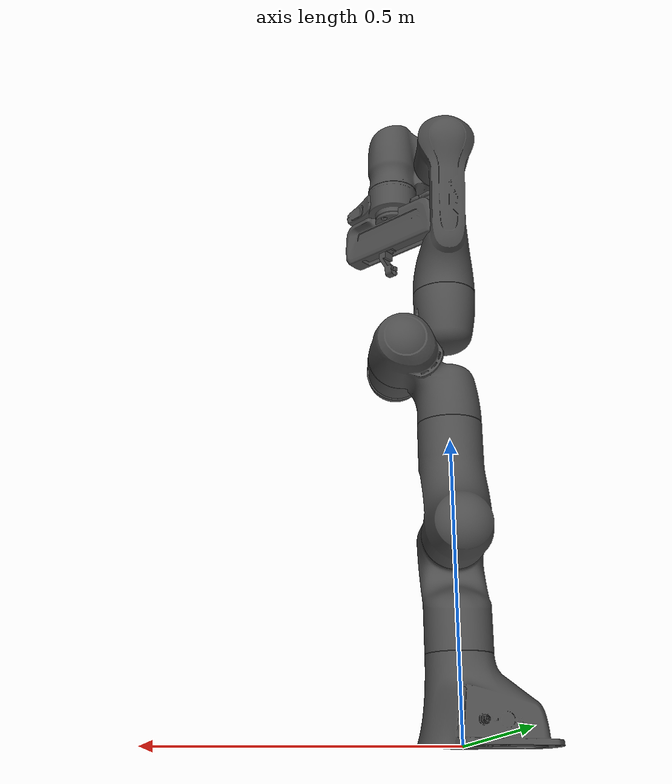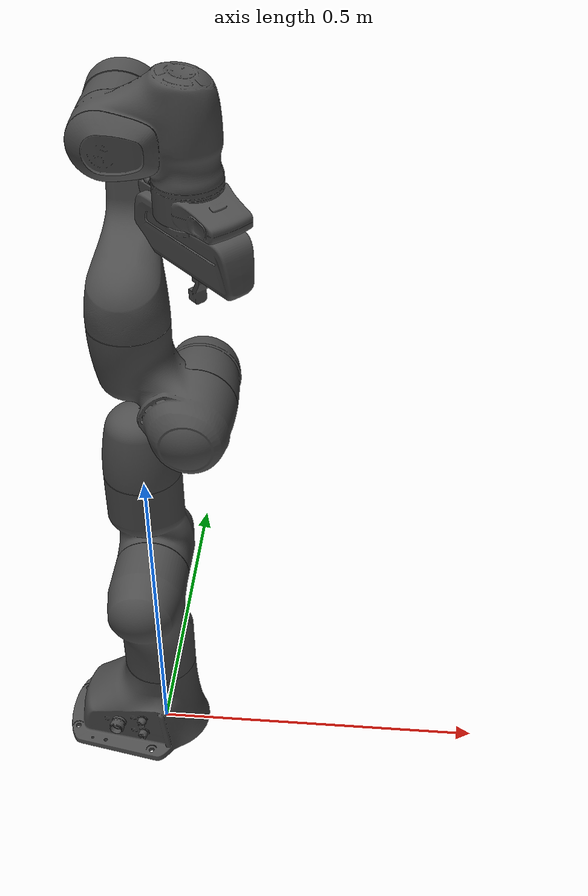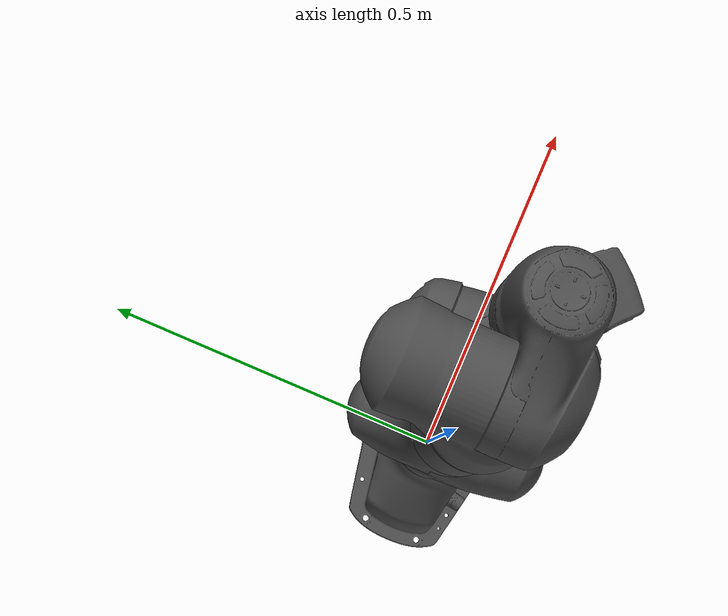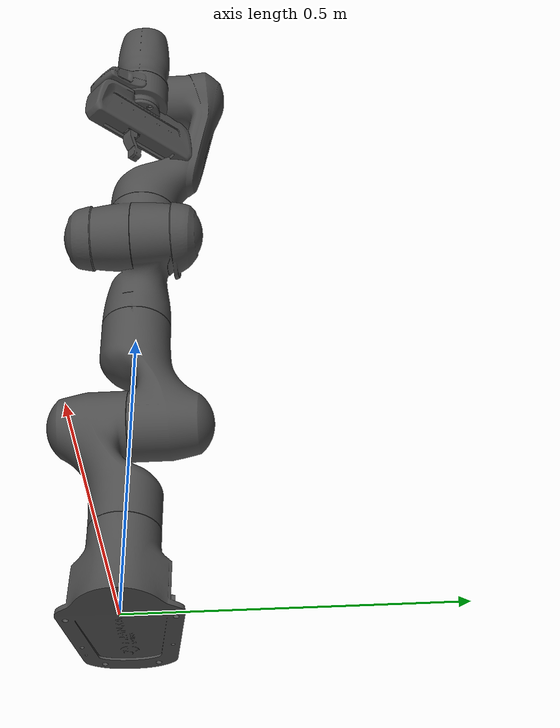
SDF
<?xml version="1.0"?>
<sdf version='1.6'>
  <model name="panda">
  <pose>0 0 0 0 0 0</pose>
    <link name='base_link'/>

    <link name='panda_link0'>
      <pose>0 0 0 0 0 0</pose>
      <inertial>
        <pose>0 0 0 0 0 0</pose>
        <inertia>
          <ixx>1</ixx>
          <ixy>0</ixy>
          <ixz>0</ixz>
          <iyy>1</iyy>
          <iyz>0</iyz>
          <izz>1</izz>
        </inertia>
        <mass>0</mass>
      </inertial>
      <collision name='panda_link0_collision'>
        <pose>0 0 0 0 0 0</pose>
        <geometry>
          <mesh>
            <scale>1 1 1</scale>
            <uri>model://panda/meshes/collision/link0.obj</uri>
          </mesh>
        </geometry>
      </collision>
      <visual name='panda_link0_visual'>
        <pose>0 0 0 0 0 0</pose>
        <geometry>
          <mesh>
            <scale>1 1 1</scale>
            <uri>model://panda/meshes/visual/link0.dae</uri>
          </mesh>
        </geometry>
        <material>
          <script>
            <name>Gazebo/DarkGrey</name>
            <uri>__default__</uri>
          </script>
        </material>
      </visual>
    </link>

    <link name='panda_link1'>
      <pose>0 0 0.333 0 0 0</pose>
      <inertial>
        <pose>0 0 0 0 0 0</pose>
        <inertia>
          <ixx>1</ixx>
          <ixy>0</ixy>
          <ixz>0</ixz>
          <iyy>1</iyy>
          <iyz>0</iyz>
          <izz>1</izz>
        </inertia>
        <mass>0</mass>
      </inertial>
      <collision name='panda_link1_collision'>
        <pose>0 0 0 0 0 0</pose>
        <geometry>
          <mesh>
            <scale>1 1 1</scale>
            <uri>model://panda/meshes/collision/link1.obj</uri>
          </mesh>
        </geometry>
      </collision>
      <visual name='panda_link1_visual'>
        <pose>0 0 0 0 0 0</pose>
        <geometry>
          <mesh>
            <scale>1 1 1</scale>
            <uri>model://panda/meshes/visual/link1.dae</uri>
          </mesh>
        </geometry>
        <material>
          <script>
            <name>Gazebo/DarkGrey</name>
            <uri>__default__</uri>
          </script>
        </material>
      </visual>
    </link>

    <link name='panda_link2'>
      <pose>0 0 0.333 -1.57079632679 0 0</pose>
      <inertial>
        <pose>0 0 0 0 0 0</pose>
        <inertia>
          <ixx>1</ixx>
          <ixy>0</ixy>
          <ixz>0</ixz>
          <iyy>1</iyy>
          <iyz>0</iyz>
          <izz>1</izz>
        </inertia>
        <mass>0</mass>
      </inertial>
      <collision name='panda_link2_collision'>
        <pose>0 0 0 0 0 0</pose>
        <geometry>
          <mesh>
            <scale>1 1 1</scale>
            <uri>model://panda/meshes/collision/link2.obj</uri>
          </mesh>
        </geometry>
      </collision>
      <visual name='panda_link2_visual'>
        <pose>0 0 0 0 0 0</pose>
        <geometry>
          <mesh>
            <scale>1 1 1</scale>
            <uri>model://panda/meshes/visual/link2.dae</uri>
          </mesh>
        </geometry>
        <material>
          <script>
            <name>Gazebo/DarkGrey</name>
            <uri>__default__</uri>
          </script>
        </material>
      </visual>
    </link>

    <link name='panda_link3'>
      <pose>0 0 0.649 0 0 0</pose>
      <inertial>
        <pose>0 0 0 0 0 0</pose>
        <inertia>
          <ixx>1</ixx>
          <ixy>0</ixy>
          <ixz>0</ixz>
          <iyy>1</iyy>
          <iyz>0</iyz>
          <izz>1</izz>
        </inertia>
        <mass>0</mass>
      </inertial>
      <collision name='panda_link3_collision'>
        <pose>0 0 0 0 0 0</pose>
        <geometry>
          <mesh>
            <scale>1 1 1</scale>
            <uri>model://panda/meshes/collision/link3.obj</uri>
          </mesh>
        </geometry>
      </collision>
      <visual name='panda_link3_visual'>
        <pose>0 0 0 0 0 0</pose>
        <geometry>
          <mesh>
            <scale>1 1 1</scale>
            <uri>model://panda/meshes/visual/link3.dae</uri>
          </mesh>
        </geometry>
        <material>
          <script>
            <name>Gazebo/DarkGrey</name>
            <uri>__default__</uri>
          </script>
        </material>
      </visual>
    </link>

    <link name='panda_link4'>
    <pose>0.0825 0 0.649 1.57079632679 0 0</pose>
    <inertial>
        <pose>0 0 0 0 0 0</pose>
        <inertia>
          <ixx>1</ixx>
          <ixy>0</ixy>
          <ixz>0</ixz>
          <iyy>1</iyy>
          <iyz>0</iyz>
          <izz>1</izz>
        </inertia>
        <mass>0</mass>
      </inertial>
      <collision name='panda_link4_collision'>
        <pose>0 0 0 0 0 0</pose>
        <geometry>
          <mesh>
            <scale>1 1 1</scale>
            <uri>model://panda/meshes/collision/link4.obj</uri>
          </mesh>
        </geometry>
      </collision>
      <visual name='panda_link4_visual'>
        <pose>0 0 0 0 0 0</pose>
        <geometry>
          <mesh>
            <scale>1 1 1</scale>
            <uri>model://panda/meshes/visual/link4.dae</uri>
          </mesh>
        </geometry>
        <material>
          <script>
            <name>Gazebo/DarkGrey</name>
            <uri>__default__</uri>
          </script>
        </material>
      </visual>
    </link>

    <link name='panda_link5'>
      <pose>0 0 1.033 0 0 0</pose>
      <inertial>
        <pose>0 0 0 0 0 0</pose>
        <inertia>
          <ixx>1</ixx>
          <ixy>0</ixy>
          <ixz>0</ixz>
          <iyy>1</iyy>
          <iyz>0</iyz>
          <izz>1</izz>
        </inertia>
        <mass>0</mass>
      </inertial>
      <collision name='panda_link5_collision'>
        <pose>0 0 0 0 0 0</pose>
        <geometry>
          <mesh>
            <scale>1 1 1</scale>
            <uri>model://panda/meshes/collision/link5.obj</uri>
          </mesh>
        </geometry>
      </collision>
      <visual name='panda_link5_visual'>
        <pose>0 0 0 0 0 0</pose>
        <geometry>
          <mesh>
            <scale>1 1 1</scale>
            <uri>model://panda/meshes/visual/link5.dae</uri>
          </mesh>
        </geometry>
        <material>
          <script>
            <name>Gazebo/DarkGrey</name>
            <uri>__default__</uri>
          </script>
        </material>
      </visual>
    </link>
    <link name='panda_link6'>
      <pose>0 0 1.033 1.57079632679 0 0</pose>
      <inertial>
        <pose>0 0 0 0 0 0</pose>
        <inertia>
          <ixx>1</ixx>
          <ixy>0</ixy>
          <ixz>0</ixz>
          <iyy>1</iyy>
          <iyz>0</iyz>
          <izz>1</izz>
        </inertia>
        <mass>0</mass>
      </inertial>
      <collision name='panda_link6_collision'>
        <pose>0 0 0 0 0 0</pose>
        <geometry>
          <mesh>
            <scale>1 1 1</scale>
            <uri>model://panda/meshes/collision/link6.obj</uri>
          </mesh>
        </geometry>
      </collision>
      <visual name='panda_link6_visual'>
        <pose>0 0 0 0 0 0</pose>
        <geometry>
          <mesh>
            <scale>1 1 1</scale>
            <uri>model://panda/meshes/visual/link6.dae</uri>
          </mesh>
        </geometry>
        <material>
          <script>
            <name>Gazebo/DarkGrey</name>
            <uri>__default__</uri>
          </script>
        </material>
      </visual>
    </link>
    <link name='panda_link7'>
      <pose>0.088 0 1.033 3.14159 0 0</pose>
      <inertial>
        <pose>0 0 0 0 0 0</pose>
        <inertia>
          <ixx>1</ixx>
          <ixy>0</ixy>
          <ixz>0</ixz>
          <iyy>1</iyy>
          <iyz>0</iyz>
          <izz>1</izz>
        </inertia>
        <mass>0</mass>
      </inertial>
      <collision name='panda_link7_collision'>
        <pose>0 0 0 0 0 0</pose>
        <geometry>
          <mesh>
            <scale>1 1 1</scale>
            <uri>model://panda/meshes/collision/link7.obj</uri>
          </mesh>
        </geometry>
      </collision>
      <visual name='panda_link7_visual'>
        <pose>0 0 0 0 0 0</pose>
        <geometry>
          <mesh>
            <scale>1 1 1</scale>
            <uri>model://panda/meshes/visual/link7.dae</uri>
          </mesh>
        </geometry>
        <material>
          <script>
            <name>Gazebo/DarkGrey</name>
            <uri>__default__</uri>
          </script>
        </material>
      </visual>
    </link>
    <link name='panda_link8'>
      <pose>0.088 0 0.926 3.14159 0 0.785398163397</pose>
    </link>

    <link name='panda_hand'>
      <pose>0.088 0 0.926 3.14159 0 0.785398163397</pose>
      <inertial>
        <pose>0 0 0 0 0 0</pose>
        <inertia>
          <ixx>1</ixx>
          <ixy>0</ixy>
          <ixz>0</ixz>
          <iyy>1</iyy>
          <iyz>0</iyz>
          <izz>1</izz>
        </inertia>
        <mass>0</mass>
      </inertial>
      <collision name='panda_hand_collision'>
        <pose>0 0 0 0 0 0</pose>
        <geometry>
          <mesh>
            <scale>1 1 1</scale>
            <uri>model://panda/meshes/collision/hand.obj</uri>
          </mesh>
        </geometry>
      </collision>
      <visual name='panda_hand_visual'>
        <pose>0 0 0 0 0 0</pose>
        <geometry>
          <mesh>
            <scale>1 1 1</scale>
            <uri>model://panda/meshes/visual/hand.dae</uri>
          </mesh>
        </geometry>
        <material>
          <script>
            <name>Gazebo/DarkGrey</name>
            <uri>__default__</uri>
          </script>
        </material>
      </visual>
    </link>
    <link name='panda_leftfinger'>
      <pose>0.088 0 0.8676926 3.14159 0 0.785398163397</pose>
      <inertial>
        <pose>0 0 0 0 0 0</pose>
        <inertia>
          <ixx>1</ixx>
          <ixy>0</ixy>
          <ixz>0</ixz>
          <iyy>1</iyy>
          <iyz>0</iyz>
          <izz>1</izz>
        </inertia>
        <mass>0</mass>
      </inertial>
      <collision name='panda_leftfinger_collision'>
        <pose>0 0 0 0 0 0</pose>
        <geometry>
          <mesh>
            <scale>1 1 1</scale>
            <uri>model://panda/meshes/collision/finger.obj</uri>
          </mesh>
        </geometry>
      </collision>
      <visual name='panda_leftfinger_visual'>
        <pose>0 0 0 0 0 0</pose>
        <geometry>
          <mesh>
            <scale>1 1 1</scale>
            <uri>model://panda/meshes/visual/finger.dae</uri>
          </mesh>
        </geometry>
        <material>
          <script>
            <name>Gazebo/DarkGrey</name>
            <uri>__default__</uri>
          </script>
        </material>
      </visual>
    </link>

    <joint name='base_joint' type='fixed'>
      <parent>base_link</parent>
      <child>panda_link0</child>
      <pose>0 0 0 0 0 0</pose>
      <axis>
        <xyz>0 0 1</xyz>
      </axis>
    </joint>

    <joint name='panda_joint1' type='revolute'>
      <parent>panda_link0</parent>
      <child>panda_link1</child>
      <pose>0 0 -0.19 0 0 0</pose>
      <axis>
        <xyz>0 0 1</xyz>
        <limit>
          <lower>-2.9671</lower>
          <upper>2.9671</upper>
        </limit>
        <dynamics>
          <damping>1.000</damping>
        </dynamics>
      </axis>
    </joint>

    <joint name='panda_joint2' type='revolute'>
      <parent>panda_link1</parent>
      <child>panda_link2</child>
      <pose>0 0 0 0 0 0</pose>
      <axis>
        <xyz>0 0 1</xyz>
        <limit>
          <lower>-2.9671</lower>
          <upper>2.9671</upper>
        </limit>
        <dynamics>
          <damping>1.000</damping>
        </dynamics>
      </axis>
    </joint>

    <joint name='panda_joint3' type='revolute'>
      <parent>panda_link2</parent>
      <child>panda_link3</child>
      <pose>0 0 -0.12 0 0 0</pose>
      <axis>
        <xyz>0 0 1</xyz>
        <limit>
          <lower>-2.9671</lower>
          <upper>2.9671</upper>
        </limit>
        <dynamics>
          <damping>1.000</damping>
        </dynamics>
      </axis>
    </joint>
    <joint name='panda_joint4' type='revolute'>
      <parent>panda_link3</parent>
      <child>panda_link4</child>
      <pose>0 0 0 0 0 0</pose>
      <axis>
        <xyz>0 0 1</xyz>
        <limit>
          <lower>-2.9671</lower>
          <upper>2.9671</upper>
        </limit>
        <dynamics>
          <damping>1.000</damping>
        </dynamics>
      </axis>
    </joint>
    <joint name='panda_joint5' type='revolute'>
      <parent>panda_link4</parent>
      <child>panda_link5</child>
      <pose>0 0 -0.26 0 0 0</pose>
      <axis>
        <xyz>0 0 1</xyz>
        <limit>
          <lower>-2.9671</lower>
          <upper>2.9671</upper>
        </limit>
        <dynamics>
          <damping>1.000</damping>
        </dynamics>
      </axis>
    </joint>
    <joint name='panda_joint6' type='revolute'>
      <parent>panda_link5</parent>
      <child>panda_link6</child>
      <pose>0 0 0 0 0 0</pose>
      <axis>
        <xyz>0 0 1</xyz>
        <limit>
          <lower>-2.9671</lower>
          <upper>2.9671</upper>
        </limit>
        <dynamics>
          <damping>1.000</damping>
        </dynamics>
      </axis>
    </joint>
    <joint name='panda_joint7' type='revolute'>
      <parent>panda_link6</parent>
      <child>panda_link7</child>
      <pose>0 0 0.05 0 0 0</pose>
      <axis>
        <xyz>0 0 1</xyz>
        <limit>
          <lower>-2.9671</lower>
          <upper>2.9671</upper>
        </limit>
        <dynamics>
          <damping>1.000</damping>
        </dynamics>
      </axis>
    </joint>
    <joint name='panda_joint8' type='fixed'>
      <parent>panda_link7</parent>
      <child>panda_link8</child>
      <pose>0 0 0 0 0 0</pose>
      <axis>
        <xyz>0 0 1</xyz>
      </axis>
    </joint>
    <joint name='panda_hand_joint' type='fixed'>
      <parent>panda_link8</parent>
      <child>panda_hand</child>
      <pose>0 0 0 0 0 0</pose>
      <axis>
        <xyz>0 0 1</xyz>
      </axis>
    </joint>
    <joint name='panda_finger_joint1' type='prismatic'>
      <parent>panda_hand</parent>
      <child>panda_leftfinger</child>
      <pose>0 0 0.0 0 0 0</pose>
      <axis>
        <xyz>0 1 0</xyz>
        <limit>
          <lower>0</lower>
          <upper>0.04</upper>
        </limit>
        <dynamics>
          <damping>1.000</damping>
        </dynamics>
      </axis>
    </joint>
  </model>
</sdf>
